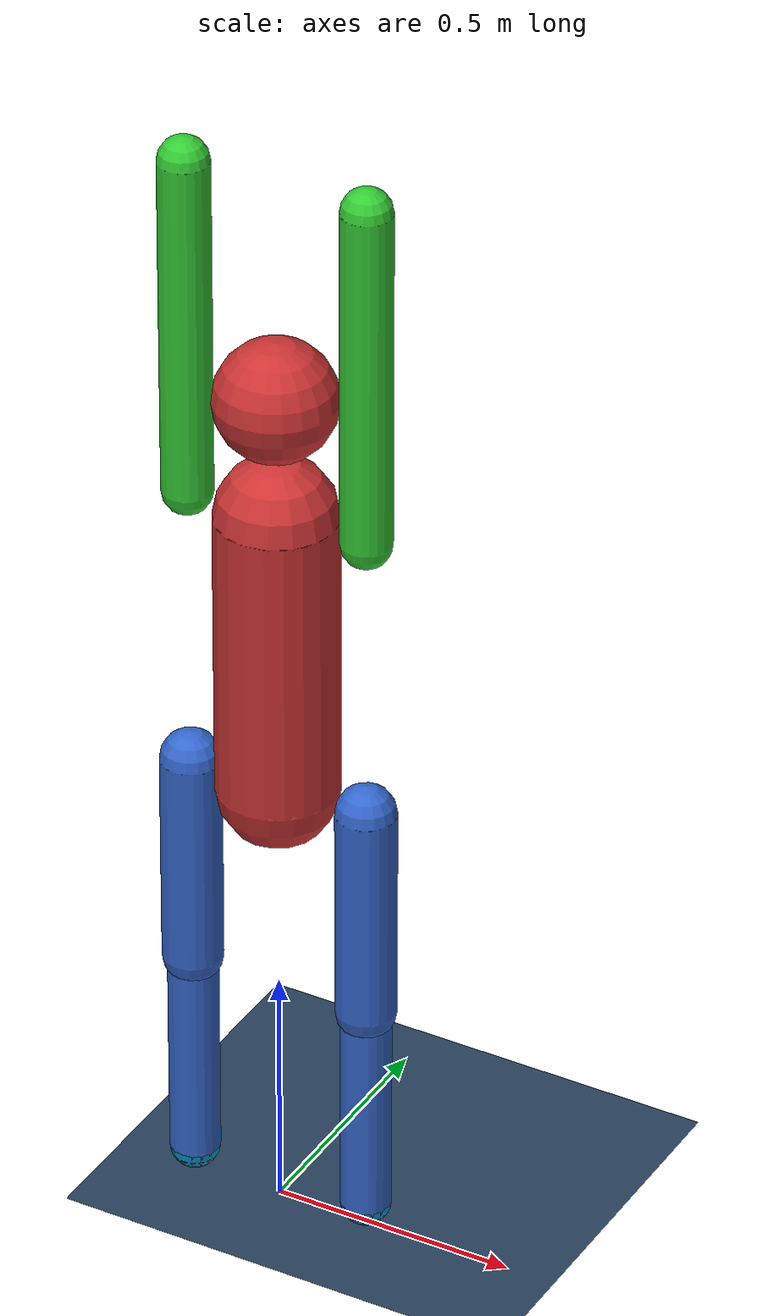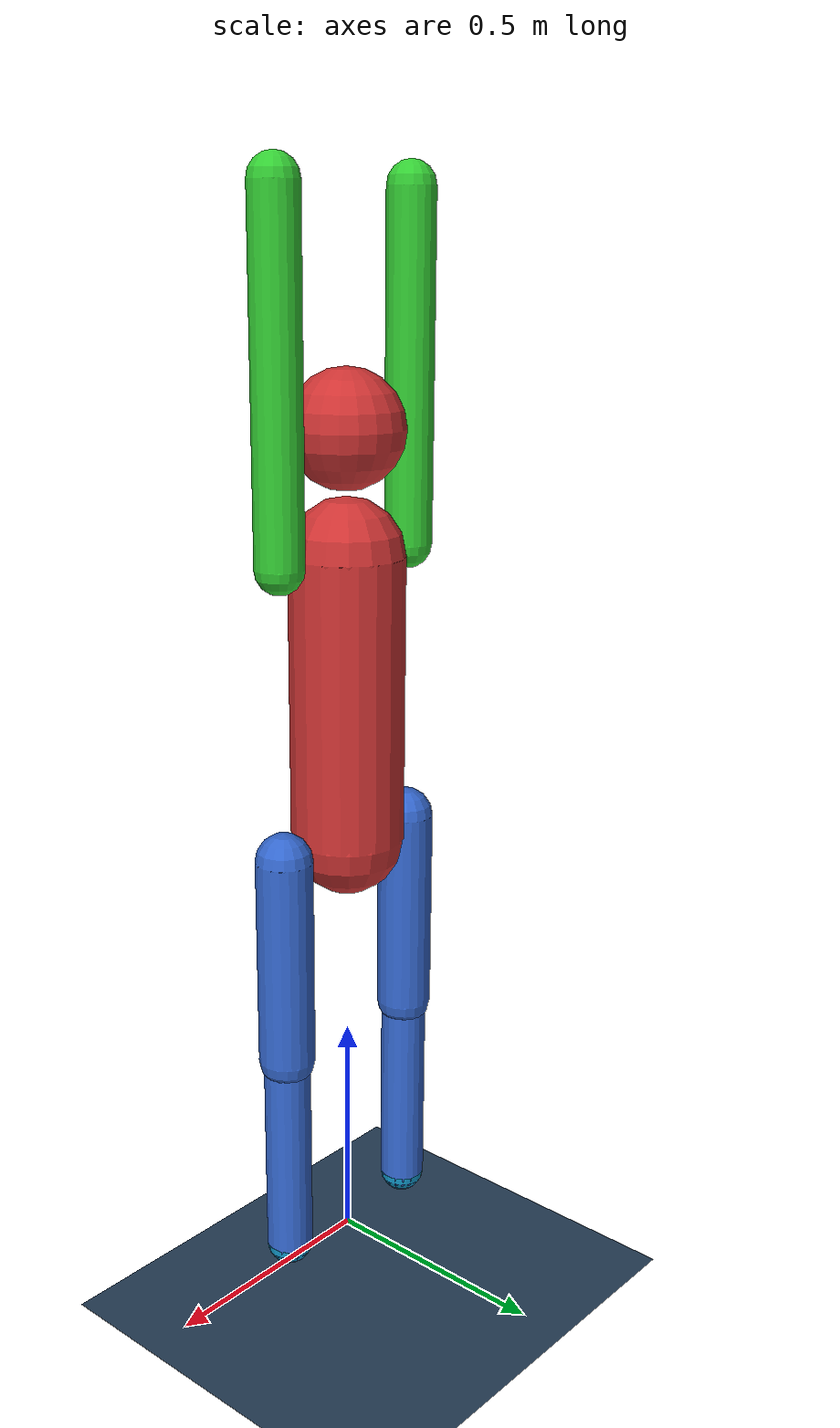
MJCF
<mujoco model="FiveLinkHumanoid">

    <compiler angle="degree" inertiafromgeom="true" meshdir="assets"/>
    <option integrator="implicitfast" timestep="0.002"/>

    <default>
        <joint armature="0.2" damping="20.0" limited="true"/>
        <geom conaffinity="1" condim="3" friction="0.8 0.05 0.005" solimp=".99 .99 .001" solref="0.02 1" margin="0.001"/>
        <position kp="1000" forcerange="-1500 1500"/>
    </default>

    <visual>
        <map znear="0.01"/>
        <quality shadowsize="2048"/>
    </visual>
<asset>
        <texture name="texplane" type="2d" builtin="checker" rgb1=".2 .3 .4" rgb2=".1 .2 .3" width="100" height="100"/>
        <material name="MatPlane" texture="texplane" shininess="0.1" specular="0.1" reflectance="0.5"/>
        <material name="TorsoMat" rgba="0.8 0.2 0.2 1"/>
        <material name="LegMat"   rgba="0.2 0.4 0.8 1"/>
        <material name="ArmMat"   rgba="0.2 0.8 0.2 1"/>
    </asset>

    <worldbody>
        <geom name="ground" type="plane" size="20 20 0.5" material="MatPlane"/>

        <body name="torso" pos="0 0 1.25">
            <joint name="root_x" type="slide" axis="1 0 0" limited="false"/>
            <joint name="root_z" type="slide" axis="0 0 1" limited="false"/>
            <joint name="root_pitch" type="hinge" axis="0 1 0" limited="false"/>

            <geom name="torso_geom" type="capsule" size="0.12 0.3" mass="36" material="TorsoMat"/>

            <body name="head_body" pos="0.0 0 0.55">
                <geom name="head_geom" type="sphere" size="0.12" mass="5" material="TorsoMat" contype="1" conaffinity="1"/>
            </body>

            <body name="right_arm" pos="0.19 0 0.3">
                <joint name="right_arm" type="hinge" axis="0 1 0" range="-20 180"/>
                <geom name="right_arm_geom" type="capsule" fromto="0 0 0 0 0 0.7" size="0.05" mass="4" material="ArmMat" contype="1" conaffinity="1"/>
                <site name="right_hand_site" pos="0 0 0.7" size="0.04" type="sphere" rgba="0.9 0.9 0 0.5"/>
            </body>

            <body name="left_arm" pos="-0.19 0 0.3">
                <joint name="left_arm" type="hinge" axis="0 -1 0" range="-20 180"/>
                <geom name="left_arm_geom" type="capsule" fromto="0 0 0 0 0 0.7" size="0.05" mass="4" material="ArmMat" contype="1" conaffinity="1"/>
                <site name="left_hand_site" pos="0 0 0.7" size="0.04" type="sphere" rgba="0.9 0.9 0 0.5"/>
            </body>

            <body name="right_leg" pos="-0.19 0 -0.3">
                <joint name="right_hip" type="hinge" axis="0 1 0" range="-100 100"/>

                <geom name="right_thigh" type="capsule" fromto="0 0 0 0 0 -0.45" size="0.06" mass="6" material="LegMat"/>

                <body name="right_shin" pos="0 0 -0.45">
                    <joint name="right_knee" type="hinge" axis="0 1 0" range="0 150"/>

                    <geom name="right_shin_geom" type="capsule" fromto="0 0 0 0 0 -0.45" size="0.05" mass="6" material="LegMat"/>
                    <site name="right_foot_site" pos="0 0 -0.45" size="0.05" type="sphere" rgba="0 0.9 0.9 0.5"/>
                </body>
            </body>

            <body name="left_leg" pos="0.19 0 -0.3">
                <joint name="left_hip" type="hinge" axis="0 1 0" range="-100 100"/>

                <geom name="left_thigh" type="capsule" fromto="0 0 0 0 0 -0.45" size="0.06" mass="6" material="LegMat"/>

                <body name="left_shin" pos="0 0 -0.45">
                    <joint name="left_knee" type="hinge" axis="0 1 0" range="0 150"/>

                    <geom name="left_shin_geom" type="capsule" fromto="0 0 0 0 0 -0.45" size="0.05" mass="6" material="LegMat"/>
                    <site name="left_foot_site" pos="0 0 -0.45" size="0.05" type="sphere" rgba="0 0.9 0.9 0.5"/>
                </body>
            </body>
        </body>
    </worldbody>

    <actuator>
        <position name="right_arm_servo" joint="right_arm" ctrlrange="-0.35 3.14"/>
        <position name="left_arm_servo"  joint="left_arm"  ctrlrange="-0.35 3.14"/>

        <position name="right_hip_servo" joint="right_hip" ctrlrange="-1.57 1.57"/>

        <position name="right_knee_servo" joint="right_knee" ctrlrange="0.0 2.62"/>

        <position name="left_hip_servo"  joint="left_hip"  ctrlrange="-1.57 1.57"/>

        <position name="left_knee_servo" joint="left_knee" ctrlrange="0.0 2.62"/>
    </actuator>

    <sensor>
        <jointpos name="left_arm_pos" joint="left_arm"/>
        <jointvel name="left_arm_vel" joint="left_arm"/>
        <jointpos name="right_arm_pos" joint="right_arm"/>
        <jointvel name="right_arm_vel" joint="right_arm"/>
        <jointpos name="left_hip_pos" joint="left_hip"/>
        <jointvel name="left_hip_vel" joint="left_hip"/>
        <jointpos name="right_hip_pos" joint="right_hip"/>
        <jointvel name="right_hip_vel" joint="right_hip"/>
        <jointpos name="left_knee_pos" joint="left_knee"/>
        <jointvel name="left_knee_vel" joint="left_knee"/>
        <jointpos name="right_knee_pos" joint="right_knee"/>
        <jointvel name="right_knee_vel" joint="right_knee"/>
        <touch name="touch_right_hand" site="right_hand_site"/>
        <touch name="touch_left_hand"  site="left_hand_site"/>
        <touch name="touch_right_foot" site="right_foot_site"/>
        <touch name="touch_left_foot"  site="left_foot_site"/>
    </sensor>
</mujoco>
